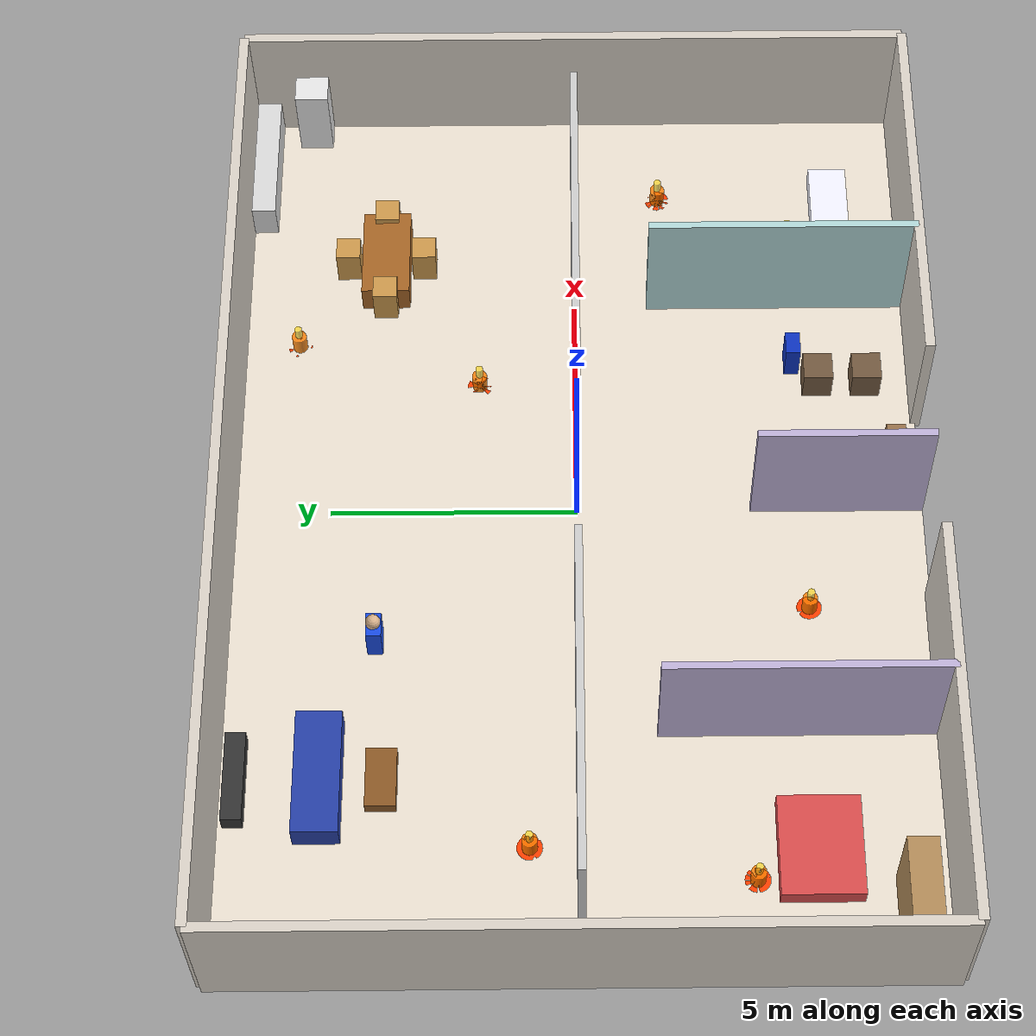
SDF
<?xml version="1.0" ?>
<sdf version="1.9">
<world name="villa_world">

  <scene>
    <ambient>0.95 0.95 0.95 1</ambient>
    <background>0.98 0.98 1 1</background>
    <shadows>true</shadows>
  </scene>

  <light name="sun" type="directional">
    <pose>0 0 20 0 0 0</pose>
    <diffuse>1 1 1 1</diffuse>
    <specular>0.3 0.3 0.3 1</specular>
    <direction>-0.4 -0.3 -1</direction>
    <cast_shadows>true</cast_shadows>
  </light>

  <light name="fire_glow_1" type="point">
    <pose>2.37 -5.22 1.5 0 0 0</pose>
    <diffuse>1.0 0.4 0.05 1</diffuse>
    <specular>0.2 0.1 0.0 1</specular>
    <attenuation>
      <range>3.5</range>
      <constant>0.4</constant>
      <linear>0.5</linear>
      <quadratic>0.1</quadratic>
    </attenuation>
    <cast_shadows>false</cast_shadows>
  </light>

  <light name="fire_glow_2" type="point">
    <pose>4.02 1.94 1.5 0 0 0</pose>
    <diffuse>1.0 0.4 0.05 1</diffuse>
    <specular>0.2 0.1 0.0 1</specular>
    <attenuation>
      <range>3.5</range>
      <constant>0.4</constant>
      <linear>0.5</linear>
      <quadratic>0.1</quadratic>
    </attenuation>
    <cast_shadows>false</cast_shadows>
  </light>

  <light name="fire_glow_3" type="point">
    <pose>6.67 -4.54 1.5 0 0 0</pose>
    <diffuse>1.0 0.4 0.05 1</diffuse>
    <specular>0.2 0.1 0.0 1</specular>
    <attenuation>
      <range>3.5</range>
      <constant>0.4</constant>
      <linear>0.5</linear>
      <quadratic>0.1</quadratic>
    </attenuation>
    <cast_shadows>false</cast_shadows>
  </light>

  <light name="fire_glow_4" type="point">
    <pose>-1.33 -5.17 1.5 0 0 0</pose>
    <diffuse>1.0 0.4 0.05 1</diffuse>
    <specular>0.2 0.1 0.0 1</specular>
    <attenuation>
      <range>3.5</range>
      <constant>0.4</constant>
      <linear>0.5</linear>
      <quadratic>0.1</quadratic>
    </attenuation>
    <cast_shadows>false</cast_shadows>
  </light>

  <light name="fire_glow_5" type="point">
    <pose>-4.78 0.06 1.5 0 0 0</pose>
    <diffuse>1.0 0.4 0.05 1</diffuse>
    <specular>0.2 0.1 0.0 1</specular>
    <attenuation>
      <range>3.5</range>
      <constant>0.4</constant>
      <linear>0.5</linear>
      <quadratic>0.1</quadratic>
    </attenuation>
    <cast_shadows>false</cast_shadows>
  </light>

  <light name="fire_glow_6" type="point">
    <pose>-8.05 -3.31 1.5 0 0 0</pose>
    <diffuse>1.0 0.4 0.05 1</diffuse>
    <specular>0.2 0.1 0.0 1</specular>
    <attenuation>
      <range>3.5</range>
      <constant>0.4</constant>
      <linear>0.5</linear>
      <quadratic>0.1</quadratic>
    </attenuation>
    <cast_shadows>false</cast_shadows>
  </light>

  <light name="fire_glow_7" type="point">
    <pose>7.77 -1.80 1.5 0 0 0</pose>
    <diffuse>1.0 0.4 0.05 1</diffuse>
    <specular>0.2 0.1 0.0 1</specular>
    <attenuation>
      <range>3.5</range>
      <constant>0.4</constant>
      <linear>0.5</linear>
      <quadratic>0.1</quadratic>
    </attenuation>
    <cast_shadows>false</cast_shadows>
  </light>

  <physics type="ode">
    <max_step_size>0.001</max_step_size>
    <real_time_factor>1</real_time_factor>
  </physics>

  <plugin name="gz::sim::systems::Physics" filename="gz-sim-physics-system"/>
  <plugin name="gz::sim::systems::UserCommands" filename="gz-sim-user-commands-system"/>
  <plugin name="gz::sim::systems::SceneBroadcaster" filename="gz-sim-scene-broadcaster-system"/>

  <plugin filename="gz-sim-sensors-system" name="gz::sim::systems::Sensors">
    <render_engine>ogre2</render_engine>
  </plugin>

  <!-- GROUND -->
  <model name="ground">
    <static>true</static>
    <link name="link">
      <collision name="c">
        <geometry><plane><normal>0 0 1</normal><size>100 100</size></plane></geometry>
      </collision>
      <visual name="v">
        <geometry><plane><normal>0 0 1</normal><size>100 100</size></plane></geometry>
        <material><ambient>0.6 0.6 0.6 1</ambient><diffuse>0.6 0.6 0.6 1</diffuse></material>
      </visual>
    </link>
  </model>

  <!-- FLOOR 20x14m -->
  <model name="villa_floor">
    <static>true</static>
    <link name="link">
      <collision name="c">
        <geometry><box><size>20 14 0.1</size></box></geometry>
      </collision>
      <visual name="v">
        <geometry><box><size>20 14 0.1</size></box></geometry>
        <material><ambient>0.92 0.88 0.82 1</ambient><diffuse>0.92 0.88 0.82 1</diffuse></material>
      </visual>
    </link>
    <pose>0 0 0.05 0 0 0</pose>
  </model>

  <!-- EXTERNAL WALLS -->
  <model name="wall_north">
    <static>true</static>
    <link name="link">
      <collision name="c"><geometry><box><size>20 0.2 3</size></box></geometry></collision>
      <visual name="v">
        <geometry><box><size>20 0.2 3</size></box></geometry>
        <material><ambient>0.85 0.82 0.78 1</ambient><diffuse>0.85 0.82 0.78 1</diffuse></material>
      </visual>
    </link>
    <pose>0 7 1.5 0 0 0</pose>
  </model>

  <model name="wall_south_left">
    <static>true</static>
    <link name="link">
      <collision name="c"><geometry><box><size>8 0.2 3</size></box></geometry></collision>
      <visual name="v">
        <geometry><box><size>8 0.2 3</size></box></geometry>
        <material><ambient>0.85 0.82 0.78 1</ambient><diffuse>0.85 0.82 0.78 1</diffuse></material>
      </visual>
    </link>
    <pose>-6 -7 1.5 0 0 0</pose>
  </model>

  <model name="wall_south_right">
    <static>true</static>
    <link name="link">
      <collision name="c"><geometry><box><size>8 0.2 3</size></box></geometry></collision>
      <visual name="v">
        <geometry><box><size>8 0.2 3</size></box></geometry>
        <material><ambient>0.85 0.82 0.78 1</ambient><diffuse>0.85 0.82 0.78 1</diffuse></material>
      </visual>
    </link>
    <pose>6 -7 1.5 0 0 0</pose>
  </model>

  <model name="wall_east">
    <static>true</static>
    <link name="link">
      <collision name="c"><geometry><box><size>0.2 14 3</size></box></geometry></collision>
      <visual name="v">
        <geometry><box><size>0.2 14 3</size></box></geometry>
        <material><ambient>0.85 0.82 0.78 1</ambient><diffuse>0.85 0.82 0.78 1</diffuse></material>
      </visual>
    </link>
    <pose>10 0 1.5 0 0 0</pose>
  </model>

  <model name="wall_west">
    <static>true</static>
    <link name="link">
      <collision name="c"><geometry><box><size>0.2 14 3</size></box></geometry></collision>
      <visual name="v">
        <geometry><box><size>0.2 14 3</size></box></geometry>
        <material><ambient>0.85 0.82 0.78 1</ambient><diffuse>0.85 0.82 0.78 1</diffuse></material>
      </visual>
    </link>
    <pose>-10 0 1.5 0 0 0</pose>
  </model>

  <!-- INTERIOR WALLS -->
  <model name="divider_west">
    <static>true</static>
    <link name="link">
      <collision name="c"><geometry><box><size>9 0.15 3</size></box></geometry></collision>
      <visual name="v">
        <geometry><box><size>7 0.15 3</size></box></geometry>
        <material><ambient>0.8 0.8 0.8 1</ambient></material>
      </visual>
    </link>
    <pose>-5.5 0 1.5 0 0 0</pose>
  </model>

  <model name="divider_east">
    <static>true</static>
    <link name="link">
      <collision name="c"><geometry><box><size>9 0.15 3</size></box></geometry></collision>
      <visual name="v">
        <geometry><box><size>7 0.15 3</size></box></geometry>
        <material><ambient>0.8 0.8 0.8 1</ambient></material>
      </visual>
    </link>
    <pose>5.5 0 1.5 0 0 0</pose>
  </model>

  <model name="wall_bedroom1">
    <static>true</static>
    <link name="link">
      <collision name="c"><geometry><box><size>0.15 5.5 3</size></box></geometry></collision>
      <visual name="v">
        <geometry><box><size>0.15 5.5 3</size></box></geometry>
        <material><ambient>0.75 0.7 0.85 1</ambient></material>
      </visual>
    </link>
    <pose>-5 -4.25 1.5 0 0 0</pose>
  </model>

  <model name="wall_bedroom2">
    <static>true</static>
    <link name="link">
      <collision name="c"><geometry><box><size>0.15 3.5 3</size></box></geometry></collision>
      <visual name="v">
        <geometry><box><size>0.15 3.5 3</size></box></geometry>
        <material><ambient>0.75 0.7 0.85 1</ambient></material>
      </visual>
    </link>
    <pose>0 -5.25 1.5 0 0 0</pose>
  </model>

  <model name="wall_bathroom">
    <static>true</static>
    <link name="link">
      <collision name="c"><geometry><box><size>0.15 5.5 3</size></box></geometry></collision>
      <visual name="v">
        <geometry><box><size>0.15 5.5 3</size></box></geometry>
        <material><ambient>0.7 0.85 0.85 1</ambient></material>
      </visual>
    </link>
    <pose>5 -4.25 1.5 0 0 0</pose>
  </model>

  <!-- FURNITURE -->
  <model name="sofa_main">
    <static>true</static>
    <link name="link">
      <collision name="c"><geometry><box><size>2.5 0.9 0.7</size></box></geometry></collision>
      <visual name="v">
        <geometry><box><size>2.5 0.9 0.7</size></box></geometry>
        <material><ambient>0.15 0.25 0.65 1</ambient><diffuse>0.15 0.25 0.65 1</diffuse></material>
      </visual>
    </link>
    <pose>-6 5 0.35 0 0 0</pose>
  </model>

  <model name="coffee_table">
    <static>true</static>
    <link name="link">
      <collision name="c"><geometry><box><size>1.2 0.6 0.4</size></box></geometry></collision>
      <visual name="v">
        <geometry><box><size>1.2 0.6 0.4</size></box></geometry>
        <material><ambient>0.55 0.35 0.15 1</ambient><diffuse>0.55 0.35 0.15 1</diffuse></material>
      </visual>
    </link>
    <pose>-6 3.8 0.2 0 0 0</pose>
  </model>

  <model name="tv_stand">
    <static>true</static>
    <link name="link">
      <collision name="c"><geometry><box><size>1.8 0.4 0.5</size></box></geometry></collision>
      <visual name="v">
        <geometry><box><size>1.8 0.4 0.5</size></box></geometry>
        <material><ambient>0.2 0.2 0.2 1</ambient><diffuse>0.2 0.2 0.2 1</diffuse></material>
      </visual>
    </link>
    <pose>-6 6.6 0.25 0 0 0</pose>
  </model>

  <model name="dining_table">
    <static>true</static>
    <link name="link">
      <collision name="c"><geometry><box><size>2 1 0.75</size></box></geometry></collision>
      <visual name="v">
        <geometry><box><size>2 1 0.75</size></box></geometry>
        <material><ambient>0.65 0.4 0.15 1</ambient><diffuse>0.65 0.4 0.15 1</diffuse></material>
      </visual>
    </link>
    <pose>6 4 0.375 0 0 0</pose>
  </model>

  <model name="chair1">
    <static>true</static>
    <link name="link">
      <collision name="c"><geometry><box><size>0.5 0.5 0.9</size></box></geometry></collision>
      <visual name="v">
        <geometry><box><size>0.5 0.5 0.9</size></box></geometry>
        <material><ambient>0.8 0.6 0.3 1</ambient></material>
      </visual>
    </link>
    <pose>5 4 0.45 0 0 0</pose>
  </model>

  <model name="chair2">
    <static>true</static>
    <link name="link">
      <collision name="c"><geometry><box><size>0.5 0.5 0.9</size></box></geometry></collision>
      <visual name="v">
        <geometry><box><size>0.5 0.5 0.9</size></box></geometry>
        <material><ambient>0.8 0.6 0.3 1</ambient></material>
      </visual>
    </link>
    <pose>7 4 0.45 0 0 0</pose>
  </model>

  <model name="chair3">
    <static>true</static>
    <link name="link">
      <collision name="c"><geometry><box><size>0.5 0.5 0.9</size></box></geometry></collision>
      <visual name="v">
        <geometry><box><size>0.5 0.5 0.9</size></box></geometry>
        <material><ambient>0.8 0.6 0.3 1</ambient></material>
      </visual>
    </link>
    <pose>6 3.2 0.45 0 0 0</pose>
  </model>

  <model name="chair4">
    <static>true</static>
    <link name="link">
      <collision name="c"><geometry><box><size>0.5 0.5 0.9</size></box></geometry></collision>
      <visual name="v">
        <geometry><box><size>0.5 0.5 0.9</size></box></geometry>
        <material><ambient>0.8 0.6 0.3 1</ambient></material>
      </visual>
    </link>
    <pose>6 4.8 0.45 0 0 0</pose>
  </model>

  <model name="kitchen_counter">
    <static>true</static>
    <link name="link">
      <collision name="c"><geometry><box><size>3 0.6 0.9</size></box></geometry></collision>
      <visual name="v">
        <geometry><box><size>3 0.6 0.9</size></box></geometry>
        <material><ambient>0.85 0.85 0.85 1</ambient><diffuse>0.85 0.85 0.85 1</diffuse></material>
      </visual>
    </link>
    <pose>8.5 6.7 0.45 0 0 0</pose>
  </model>

  <model name="fridge">
    <static>true</static>
    <link name="link">
      <collision name="c"><geometry><box><size>0.7 0.7 1.8</size></box></geometry></collision>
      <visual name="v">
        <geometry><box><size>0.7 0.7 1.8</size></box></geometry>
        <material><ambient>0.9 0.9 0.9 1</ambient><diffuse>0.9 0.9 0.9 1</diffuse></material>
      </visual>
    </link>
    <pose>9.65 5.65 0.9 0 0 0</pose>
  </model>

  <model name="bed_1">
    <static>true</static>
    <link name="link">
      <collision name="c"><geometry><box><size>2 1.6 0.5</size></box></geometry></collision>
      <visual name="v">
        <geometry><box><size>2 1.6 0.5</size></box></geometry>
        <material><ambient>0.85 0.3 0.3 1</ambient><diffuse>0.85 0.3 0.3 1</diffuse></material>
      </visual>
    </link>
    <pose>-7.5 -4.5 0.25 0 0 0</pose>
  </model>

  <model name="wardrobe_1">
    <static>true</static>
    <link name="link">
      <collision name="c"><geometry><box><size>2 0.6 2</size></box></geometry></collision>
      <visual name="v">
        <geometry><box><size>2 0.6 2</size></box></geometry>
        <material><ambient>0.7 0.55 0.35 1</ambient></material>
      </visual>
    </link>
    <pose>-9 -6.2 1 0 0 0</pose>
  </model>

  <model name="bathtub">
    <static>true</static>
    <link name="link">
      <collision name="c"><geometry><box><size>1.6 0.8 0.5</size></box></geometry></collision>
      <visual name="v">
        <geometry><box><size>1.6 0.8 0.5</size></box></geometry>
        <material><ambient>0.95 0.95 1 1</ambient><diffuse>0.95 0.95 1 1</diffuse></material>
      </visual>
    </link>
    <pose>7.5 -5.5 0.25 0 0 0</pose>
  </model>

  <model name="sink">
    <static>true</static>
    <link name="link">
      <collision name="c"><geometry><box><size>0.6 0.5 0.85</size></box></geometry></collision>
      <visual name="v">
        <geometry><box><size>0.6 0.5 0.85</size></box></geometry>
        <material><ambient>0.9 0.9 0.9 1</ambient></material>
      </visual>
    </link>
    <pose>5.5 -6.5 0.425 0 0 0</pose>
  </model>

  <model name="hall_cabinet">
    <static>true</static>
    <link name="link">
      <collision name="c"><geometry><box><size>1 0.4 0.9</size></box></geometry></collision>
      <visual name="v">
        <geometry><box><size>1 0.4 0.9</size></box></geometry>
        <material><ambient>0.6 0.45 0.3 1</ambient></material>
      </visual>
    </link>
    <pose>1 -6.5 0.45 0 0 0</pose>
  </model>

  <!-- HUMAN ENTITIES (Phase 2) -->
  <model name="human_victim_1">
    <static>true</static>
    <pose>-3.0 4.0 0.0 0 0 0</pose>
    <link name="body">
      <visual name="body_visual">
        <pose>0 0 0.45 0 0 0</pose>
        <geometry><box><size>0.5 0.3 0.9</size></box></geometry>
        <material>
          <ambient>0.1 0.3 0.9 1</ambient>
          <diffuse>0.1 0.3 0.9 1</diffuse>
          <emissive>0.0 0.05 0.2 1</emissive>
        </material>
      </visual>
      <visual name="head_visual">
        <pose>0 0 1.0 0 0 0</pose>
        <geometry><sphere><radius>0.15</radius></sphere></geometry>
        <material>
          <ambient>0.85 0.7 0.55 1</ambient>
          <diffuse>0.85 0.7 0.55 1</diffuse>
        </material>
      </visual>
      <collision name="body_col">
        <pose>0 0 0.45 0 0 0</pose>
        <geometry><box><size>0.5 0.3 0.9</size></box></geometry>
      </collision>
    </link>
  </model>

  <model name="human_victim_2">
    <static>true</static>
    <pose>-4.0497 -4.8122 0.0 0 0 0</pose>
    <link name="body">
      <visual name="body_visual">
        <pose>0 0 0.20 0 0 0</pose>
        <geometry><box><size>0.3 0.8 0.4</size></box></geometry>
        <material>
          <ambient>0.15 0.45 0.85 1</ambient>
          <diffuse>0.15 0.45 0.85 1</diffuse>
          <emissive>0.0 0.05 0.2 1</emissive>
        </material>
      </visual>
      <collision name="body_col">
        <pose>0 0 0.20 0 0 0</pose>
        <geometry><box><size>0.3 0.8 0.4</size></box></geometry>
      </collision>
    </link>
  </model>

  <model name="human_victim_3_blocked">
    <static>true</static>
    <pose>3.5 -4.5 0.0 0 0 0</pose>
    <link name="body">
      <visual name="body_visual">
        <pose>0 0 0.45 0 0 0</pose>
        <geometry><box><size>0.5 0.3 0.9</size></box></geometry>
        <material>
          <ambient>0.05 0.2 0.75 1</ambient>
          <diffuse>0.05 0.2 0.75 1</diffuse>
          <emissive>0.0 0.02 0.15 1</emissive>
        </material>
      </visual>
      <collision name="body_col">
        <pose>0 0 0.45 0 0 0</pose>
        <geometry><box><size>0.5 0.3 0.9</size></box></geometry>
      </collision>
    </link>
  </model>

  <model name="debris_left">
    <static>true</static>
    <pose>3.0 -5.0 0.0 0 0 0</pose>
    <link name="link">
      <collision name="c"><geometry><box><size>0.6 0.6 0.8</size></box></geometry></collision>
      <visual name="v">
        <pose>0 0 0.4 0 0 0</pose>
        <geometry><box><size>0.6 0.6 0.8</size></box></geometry>
        <material><ambient>0.45 0.35 0.25 1</ambient><diffuse>0.45 0.35 0.25 1</diffuse></material>
      </visual>
    </link>
  </model>

  <model name="debris_right">
    <static>true</static>
    <pose>3.0 -6.0 0.0 0 0 0</pose>
    <link name="link">
      <collision name="c"><geometry><box><size>0.6 0.6 0.8</size></box></geometry></collision>
      <visual name="v">
        <pose>0 0 0.4 0 0 0</pose>
        <geometry><box><size>0.6 0.6 0.8</size></box></geometry>
        <material><ambient>0.45 0.35 0.25 1</ambient><diffuse>0.45 0.35 0.25 1</diffuse></material>
      </visual>
    </link>
  </model>

  <!--
    PHASE 2 - FIRE ENTITY  position (-2.2913, -4.5792) — primary fire (Phase 2 spec)
    Static, no physics. Ignition zone radius ~0.8 m.
  -->
  <model name="fire_entity">
    <static>true</static>
    <pose>-2.2913 -4.5792 0.0 0 0 0</pose>
    <link name="fire_base">
      <visual name="base_vis">
        <pose>0 0 0.05 0 0 0</pose>
        <geometry><cylinder><radius>0.25</radius><length>0.10</length></cylinder></geometry>
        <material>
          <ambient>1.0 0.25 0.0 0.9</ambient>
          <diffuse>1.0 0.25 0.0 0.9</diffuse>
          <emissive>0.9 0.15 0.0 1</emissive>
        </material>
      </visual>
    </link>
    <link name="fire_mid">
      <visual name="mid_vis">
        <pose>0 0 0.30 0 0 0</pose>
        <geometry><cylinder><radius>0.15</radius><length>0.40</length></cylinder></geometry>
        <material>
          <ambient>1.0 0.5 0.0 0.85</ambient>
          <diffuse>1.0 0.5 0.0 0.85</diffuse>
          <emissive>0.8 0.3 0.0 1</emissive>
        </material>
      </visual>
    </link>
    <link name="fire_tip">
      <visual name="tip_vis">
        <pose>0 0 0.65 0 0 0</pose>
        <geometry><cylinder><radius>0.07</radius><length>0.25</length></cylinder></geometry>
        <material>
          <ambient>1.0 0.85 0.1 0.7</ambient>
          <diffuse>1.0 0.85 0.1 0.7</diffuse>
          <emissive>1.0 0.7 0.0 1</emissive>
        </material>
      </visual>
    </link>
    <link name="fire_obstacle">
      <collision name="col">
        <pose>0 0 0.4 0 0 0</pose>
        <geometry><cylinder><radius>0.30</radius><length>0.80</length></cylinder></geometry>
      </collision>
    </link>
  </model>

  <!--
    PHASE 2 - FIRE 2  position (4.02, 5.7862)
    Static, no physics. Ignition zone radius ~0.8 m.
    seed=42 ensures deterministic placement across runs.
  -->
  <model name="fire_2">
    <static>true</static>
    <pose>4.02 5.7862 0.0 0 0 0</pose>
    <link name="fire_base">
      <visual name="base_vis">
        <pose>0 0 0.05 0 0 0</pose>
        <geometry><cylinder><radius>0.25</radius><length>0.10</length></cylinder></geometry>
        <material>
          <ambient>1.0 0.25 0.0 0.9</ambient>
          <diffuse>1.0 0.25 0.0 0.9</diffuse>
          <emissive>0.9 0.15 0.0 1</emissive>
        </material>
      </visual>
    </link>
    <link name="fire_mid">
      <visual name="mid_vis">
        <pose>0 0 0.30 0 0 0</pose>
        <geometry><cylinder><radius>0.15</radius><length>0.40</length></cylinder></geometry>
        <material>
          <ambient>1.0 0.5 0.0 0.85</ambient>
          <diffuse>1.0 0.5 0.0 0.85</diffuse>
          <emissive>0.8 0.3 0.0 1</emissive>
        </material>
      </visual>
    </link>
    <link name="fire_tip">
      <visual name="tip_vis">
        <pose>0 0 0.65 0 0 0</pose>
        <geometry><cylinder><radius>0.07</radius><length>0.25</length></cylinder></geometry>
        <material>
          <ambient>1.0 0.85 0.1 0.7</ambient>
          <diffuse>1.0 0.85 0.1 0.7</diffuse>
          <emissive>1.0 0.7 0.0 1</emissive>
        </material>
      </visual>
    </link>
    <link name="fire_obstacle">
      <collision name="col">
        <pose>0 0 0.4 0 0 0</pose>
        <geometry><cylinder><radius>0.30</radius><length>0.80</length></cylinder></geometry>
      </collision>
    </link>
  </model>

  <!--
    PHASE 2 - FIRE 3  position (6.67, -4.54)
    Static, no physics. Ignition zone radius ~0.8 m.
    seed=42 ensures deterministic placement across runs.
  -->
  <model name="fire_3">
    <static>true</static>
    <pose>6.67 -4.54 0.0 0 0 0</pose>
    <link name="fire_base">
      <visual name="base_vis">
        <pose>0 0 0.05 0 0 0</pose>
        <geometry><cylinder><radius>0.25</radius><length>0.10</length></cylinder></geometry>
        <material>
          <ambient>1.0 0.25 0.0 0.9</ambient>
          <diffuse>1.0 0.25 0.0 0.9</diffuse>
          <emissive>0.9 0.15 0.0 1</emissive>
        </material>
      </visual>
    </link>
    <link name="fire_mid">
      <visual name="mid_vis">
        <pose>0 0 0.30 0 0 0</pose>
        <geometry><cylinder><radius>0.15</radius><length>0.40</length></cylinder></geometry>
        <material>
          <ambient>1.0 0.5 0.0 0.85</ambient>
          <diffuse>1.0 0.5 0.0 0.85</diffuse>
          <emissive>0.8 0.3 0.0 1</emissive>
        </material>
      </visual>
    </link>
    <link name="fire_tip">
      <visual name="tip_vis">
        <pose>0 0 0.65 0 0 0</pose>
        <geometry><cylinder><radius>0.07</radius><length>0.25</length></cylinder></geometry>
        <material>
          <ambient>1.0 0.85 0.1 0.7</ambient>
          <diffuse>1.0 0.85 0.1 0.7</diffuse>
          <emissive>1.0 0.7 0.0 1</emissive>
        </material>
      </visual>
    </link>
    <link name="fire_obstacle">
      <collision name="col">
        <pose>0 0 0.4 0 0 0</pose>
        <geometry><cylinder><radius>0.30</radius><length>0.80</length></cylinder></geometry>
      </collision>
    </link>
  </model>

  <!--
    PHASE 2 - FIRE 4  position (-1.33, -5.17)
    Static, no physics. Ignition zone radius ~0.8 m.
    seed=42 ensures deterministic placement across runs.
  -->
  <model name="fire_4">
    <static>true</static>
    <pose>3.0 2.0 0.0 0 0 0</pose>
    <link name="fire_base">
      <visual name="base_vis">
        <pose>0 0 0.05 0 0 0</pose>
        <geometry><cylinder><radius>0.25</radius><length>0.10</length></cylinder></geometry>
        <material>
          <ambient>1.0 0.25 0.0 0.9</ambient>
          <diffuse>1.0 0.25 0.0 0.9</diffuse>
          <emissive>0.9 0.15 0.0 1</emissive>
        </material>
      </visual>
    </link>
    <link name="fire_mid">
      <visual name="mid_vis">
        <pose>0 0 0.30 0 0 0</pose>
        <geometry><cylinder><radius>0.15</radius><length>0.40</length></cylinder></geometry>
        <material>
          <ambient>1.0 0.5 0.0 0.85</ambient>
          <diffuse>1.0 0.5 0.0 0.85</diffuse>
          <emissive>0.8 0.3 0.0 1</emissive>
        </material>
      </visual>
    </link>
    <link name="fire_tip">
      <visual name="tip_vis">
        <pose>0 0 0.65 0 0 0</pose>
        <geometry><cylinder><radius>0.07</radius><length>0.25</length></cylinder></geometry>
        <material>
          <ambient>1.0 0.85 0.1 0.7</ambient>
          <diffuse>1.0 0.85 0.1 0.7</diffuse>
          <emissive>1.0 0.7 0.0 1</emissive>
        </material>
      </visual>
    </link>
    <link name="fire_obstacle">
      <collision name="col">
        <pose>0 0 0.4 0 0 0</pose>
        <geometry><cylinder><radius>0.30</radius><length>0.80</length></cylinder></geometry>
      </collision>
    </link>
  </model>

  <!--
    PHASE 2 - FIRE 5  position (-7.3638, 0.9669)
    Static, no physics. Ignition zone radius ~0.8 m.
    seed=42 ensures deterministic placement across runs.
  -->
  <model name="fire_5">
    <static>true</static>
    <pose>-7.3638 0.9669 0.0 0 0 0</pose>
    <link name="fire_base">
      <visual name="base_vis">
        <pose>0 0 0.05 0 0 0</pose>
        <geometry><cylinder><radius>0.25</radius><length>0.10</length></cylinder></geometry>
        <material>
          <ambient>1.0 0.25 0.0 0.9</ambient>
          <diffuse>1.0 0.25 0.0 0.9</diffuse>
          <emissive>0.9 0.15 0.0 1</emissive>
        </material>
      </visual>
    </link>
    <link name="fire_mid">
      <visual name="mid_vis">
        <pose>0 0 0.30 0 0 0</pose>
        <geometry><cylinder><radius>0.15</radius><length>0.40</length></cylinder></geometry>
        <material>
          <ambient>1.0 0.5 0.0 0.85</ambient>
          <diffuse>1.0 0.5 0.0 0.85</diffuse>
          <emissive>0.8 0.3 0.0 1</emissive>
        </material>
      </visual>
    </link>
    <link name="fire_tip">
      <visual name="tip_vis">
        <pose>0 0 0.65 0 0 0</pose>
        <geometry><cylinder><radius>0.07</radius><length>0.25</length></cylinder></geometry>
        <material>
          <ambient>1.0 0.85 0.1 0.7</ambient>
          <diffuse>1.0 0.85 0.1 0.7</diffuse>
          <emissive>1.0 0.7 0.0 1</emissive>
        </material>
      </visual>
    </link>
    <link name="fire_obstacle">
      <collision name="col">
        <pose>0 0 0.4 0 0 0</pose>
        <geometry><cylinder><radius>0.30</radius><length>0.80</length></cylinder></geometry>
      </collision>
    </link>
  </model>

  <!--
    PHASE 2 - FIRE 6  position (-8.05, -3.31)
    Static, no physics. Ignition zone radius ~0.8 m.
    seed=42 ensures deterministic placement across runs.
  -->
  <model name="fire_6">
    <static>true</static>
    <pose>-8.05 -3.31 0.0 0 0 0</pose>
    <link name="fire_base">
      <visual name="base_vis">
        <pose>0 0 0.05 0 0 0</pose>
        <geometry><cylinder><radius>0.25</radius><length>0.10</length></cylinder></geometry>
        <material>
          <ambient>1.0 0.25 0.0 0.9</ambient>
          <diffuse>1.0 0.25 0.0 0.9</diffuse>
          <emissive>0.9 0.15 0.0 1</emissive>
        </material>
      </visual>
    </link>
    <link name="fire_mid">
      <visual name="mid_vis">
        <pose>0 0 0.30 0 0 0</pose>
        <geometry><cylinder><radius>0.15</radius><length>0.40</length></cylinder></geometry>
        <material>
          <ambient>1.0 0.5 0.0 0.85</ambient>
          <diffuse>1.0 0.5 0.0 0.85</diffuse>
          <emissive>0.8 0.3 0.0 1</emissive>
        </material>
      </visual>
    </link>
    <link name="fire_tip">
      <visual name="tip_vis">
        <pose>0 0 0.65 0 0 0</pose>
        <geometry><cylinder><radius>0.07</radius><length>0.25</length></cylinder></geometry>
        <material>
          <ambient>1.0 0.85 0.1 0.7</ambient>
          <diffuse>1.0 0.85 0.1 0.7</diffuse>
          <emissive>1.0 0.7 0.0 1</emissive>
        </material>
      </visual>
    </link>
    <link name="fire_obstacle">
      <collision name="col">
        <pose>0 0 0.4 0 0 0</pose>
        <geometry><cylinder><radius>0.30</radius><length>0.80</length></cylinder></geometry>
      </collision>
    </link>
  </model>

  <!--
    PHASE 2 - FIRE 7  position (7.77, -1.80)
    Static, no physics. Ignition zone radius ~0.8 m.
    seed=42 ensures deterministic placement across runs.
  -->
  <model name="fire_7">
    <static>true</static>
    <pose>7.77 -1.80 0.0 0 0 0</pose>
    <link name="fire_base">
      <visual name="base_vis">
        <pose>0 0 0.05 0 0 0</pose>
        <geometry><cylinder><radius>0.25</radius><length>0.10</length></cylinder></geometry>
        <material>
          <ambient>1.0 0.25 0.0 0.9</ambient>
          <diffuse>1.0 0.25 0.0 0.9</diffuse>
          <emissive>0.9 0.15 0.0 1</emissive>
        </material>
      </visual>
    </link>
    <link name="fire_mid">
      <visual name="mid_vis">
        <pose>0 0 0.30 0 0 0</pose>
        <geometry><cylinder><radius>0.15</radius><length>0.40</length></cylinder></geometry>
        <material>
          <ambient>1.0 0.5 0.0 0.85</ambient>
          <diffuse>1.0 0.5 0.0 0.85</diffuse>
          <emissive>0.8 0.3 0.0 1</emissive>
        </material>
      </visual>
    </link>
    <link name="fire_tip">
      <visual name="tip_vis">
        <pose>0 0 0.65 0 0 0</pose>
        <geometry><cylinder><radius>0.07</radius><length>0.25</length></cylinder></geometry>
        <material>
          <ambient>1.0 0.85 0.1 0.7</ambient>
          <diffuse>1.0 0.85 0.1 0.7</diffuse>
          <emissive>1.0 0.7 0.0 1</emissive>
        </material>
      </visual>
    </link>
    <link name="fire_obstacle">
      <collision name="col">
        <pose>0 0 0.4 0 0 0</pose>
        <geometry><cylinder><radius>0.30</radius><length>0.80</length></cylinder></geometry>
      </collision>
    </link>
  </model>

</world>
</sdf>
